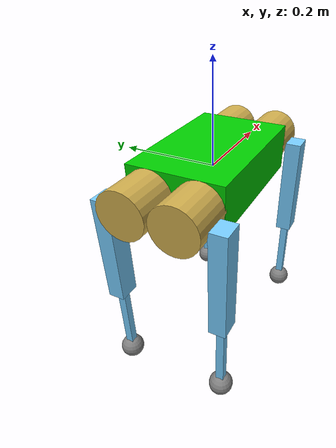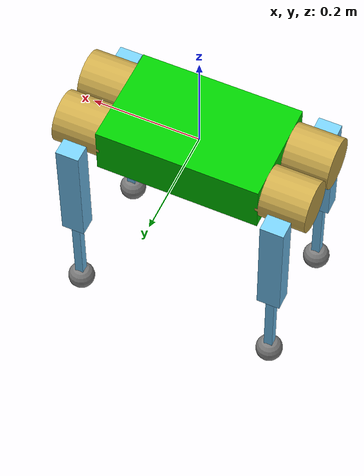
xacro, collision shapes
<?xml version="1.0" ?>
<robot name="quadruped"
    xmlns:xacro="http://ros.org/wiki/xacro">

    <xacro:arg name="robot_type"
        default="mini_cheetah" />
    <xacro:arg name="hung_up"
        default="False" />
    <xacro:arg name="gazebo_control"
        default="False" />

    <xacro:include filename="$(find quadruped_description)/urdf/common/leg.xacro" />
    <xacro:include filename="$(find quadruped_description)/urdf/common/material.xacro" />
    <xacro:include filename="$(find quadruped_description)/urdf/robot_const/$(arg robot_type).xacro" />

    <xacro:if value="$(arg hung_up)">
        <link name="world" />
        <joint name="base_static_joint"
            type="fixed">
            <origin rpy="0 0 0"
                xyz="0 0 0" />
            <parent link="world" />
            <child link="base_link" />
        </joint>
    </xacro:if>
    <xacro:unless value="$(arg hung_up)">
        <link name="root" />
        <joint name="root_dummy_joint"
            type="fixed">
            <origin rpy="0 0 0"
                xyz="0 0 0" />
            <parent link="root" />
            <child link="base_link" />
        </joint>
    </xacro:unless>

    <link name="base_link">
        <visual>
            <origin rpy="0 0 0"
                xyz="0 0 0" />
            <geometry>
                <mesh filename="package://quadruped_description/meshes/$(arg robot_type)_base.obj"
                    scale="1 1 1" />
            </geometry>
            <material name="green" />
        </visual>
        <collision>
            <origin rpy="0 0 0"
                xyz="0 0 0" />
            <geometry>
                <box size="${base_length} ${base_width} ${base_height}" />
            </geometry>
        </collision>
        <inertial>
            <origin rpy="0 0 0"
                xyz="${base_com_x} ${base_com_y} ${base_com_z}" />
            <mass value="${base_mass}" />
            <inertia ixx="${base_ixx}"
                ixy="${base_ixy}"
                ixz="${base_ixz}"
                iyy="${base_iyy}"
                iyz="${base_iyz}"
                izz="${base_izz}" />
        </inertial>
    </link>

    <xacro:leg prefix="FR"
        mirror="-1"
        mirror_mesh="False"
        front_hind="1"
        front_hind_mesh="True">
        <origin rpy="0 0 0"
            xyz="${leg_offset_x} ${-leg_offset_y} 0" />
    </xacro:leg>

    <xacro:leg prefix="FL"
        mirror="1"
        mirror_mesh="True"
        front_hind="1"
        front_hind_mesh="True">
        <origin rpy="0 0 0"
            xyz="${leg_offset_x} ${leg_offset_y} 0" />
    </xacro:leg>

    <xacro:leg prefix="RR"
        mirror="-1"
        mirror_mesh="False"
        front_hind="-1"
        front_hind_mesh="False">
        <origin rpy="0 0 0"
            xyz="${-leg_offset_x} ${-leg_offset_y} 0" />
    </xacro:leg>

    <xacro:leg prefix="RL"
        mirror="1"
        mirror_mesh="True"
        front_hind="-1"
        front_hind_mesh="False">
        <origin rpy="0 0 0"
            xyz="${-leg_offset_x} ${leg_offset_y} 0" />
    </xacro:leg>

    <xacro:if value="$(arg gazebo_control)">
        <xacro:include filename="$(find quadruped_description)/urdf/ros_control/gazebo.xacro" />
    </xacro:if >
</robot>

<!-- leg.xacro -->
<robot xmlns:xacro="http://www.ros.org/wiki/xacro">

    <xacro:macro name="leg"
        params="prefix mirror mirror_mesh front_hind front_hind_mesh *origin">

        <joint name="${prefix}_hip_joint"
            type="revolute">
            <xacro:insert_block name="origin" />
            <parent link="base_link" />
            <child link="${prefix}_hip_link" />
            <axis xyz="1 0 0" />
            <dynamics damping="${damping}"
                friction="${friction}" />
            <xacro:if value="${(mirror_mesh == True)}">
                <limit effort="${hip_torque_max}"
                    velocity="${hip_velocity_max}"
                    lower="${hip_min*PI/180}"
                    upper="${hip_max*PI/180}" />
            </xacro:if>
            <xacro:if value="${(mirror_mesh == False)}">
                <limit effort="${hip_torque_max}"
                    velocity="${hip_velocity_max}"
                    lower="${-1.0*hip_max*PI/180}"
                    upper="${-1.0*hip_min*PI/180}" />
            </xacro:if>
        </joint>

        <link name="${prefix}_hip_link">
            <visual>
                <xacro:if value="${(mirror_mesh == True) and (front_hind_mesh == True)}">
                    <origin rpy="0 0 ${-PI/2}"
                        xyz="${-1.0*hip_mesh_offest_x} 0 0" />
                </xacro:if>
                <xacro:if value="${(mirror_mesh == False) and (front_hind_mesh == True)}">
                    <origin rpy="${PI} 0 ${PI/2}"
                        xyz="${-1.0*hip_mesh_offest_x} 0 0" />
                </xacro:if>
                <xacro:if value="${(mirror_mesh == True) and (front_hind_mesh == False)}">
                    <origin rpy="${PI} 0 ${-PI/2}"
                        xyz="${hip_mesh_offest_x} 0 0" />
                </xacro:if>
                <xacro:if value="${(mirror_mesh == False) and (front_hind_mesh == False)}">
                    <origin rpy="0 0 ${PI/2}"
                        xyz="${hip_mesh_offest_x} 0 0" />
                </xacro:if>
                <geometry>
                    <mesh filename="package://quadruped_description/meshes/$(arg robot_type)_hip.obj"
                        scale="1 1 1" />
                </geometry>
                <material name="gold" />
            </visual>
            <collision>
                <origin rpy="0 ${-PI/2} 0"
                        xyz="0 0 0" />
                <geometry>
                    <cylinder radius="${hip_height/2.0}"
                        length="${hip_length}" />
                </geometry>
            </collision>
            <inertial>
                <origin rpy="0 0 0"
                    xyz="${hip_com_x*front_hind} ${hip_com_y*mirror} ${hip_com_z}" />
                <mass value="${hip_mass}" />
                <inertia ixx="${hip_ixx}"
                    ixy="${hip_ixy*mirror*front_hind}"
                    ixz="${hip_ixz*front_hind}"
                    iyy="${hip_iyy}"
                    iyz="${hip_iyz*mirror}"
                    izz="${hip_izz}" />
            </inertial>
        </link>

        <joint name="${prefix}_thigh_joint"
            type="revolute">
            <origin rpy="0 0 0"
                xyz="0 ${thigh_offset_y*mirror} 0" />
            <parent link="${prefix}_hip_link" />
            <child link="${prefix}_thigh_link" />
            <axis xyz="0 -1 0" />
            <dynamics damping="${damping}"
                friction="${friction}" />
            <limit effort="${thigh_torque_max}"
                velocity="${thigh_velocity_max}"
                lower="${thigh_min*PI/180}"
                upper="${thigh_max*PI/180}" />
        </joint>

        <link name="${prefix}_thigh_link">
            <visual>
                <origin rpy="0 ${-PI/2} 0"
                    xyz="0 0 0" />
                <geometry>
                    <mesh filename="package://quadruped_description/meshes/$(arg robot_type)_thigh.obj"
                        scale="1 1 1" />
                </geometry>
                <material name="white_blue" />
            </visual>
            <collision>
                <origin rpy="0 0 0"
                    xyz="0 0 ${-1.0*thigh_height / 2.0}" />
                <geometry>
                    <box size="${thigh_length} ${thigh_width} ${thigh_height}" />
                </geometry>
            </collision>
            <inertial>
                <origin rpy="0 0 0"
                    xyz="${thigh_com_x} ${thigh_com_y*mirror} ${thigh_com_z}" />
                <mass value="${thigh_mass}" />
                <inertia ixx="${thigh_ixx}"
                    ixy="${thigh_ixy*mirror}"
                    ixz="${thigh_ixz}"
                    iyy="${thigh_iyy}"
                    iyz="${thigh_iyz*mirror}"
                    izz="${thigh_izz}" />
            </inertial>
        </link>

        <joint name="${prefix}_calf_joint"
            type="revolute">
            <origin rpy="0 0 0"
                xyz="0 0 ${-1.0*calf_offset_z}" />
            <parent link="${prefix}_thigh_link" />
            <child link="${prefix}_calf_link" />
            <axis xyz="0 -1 0" />
            <dynamics damping="${damping}"
                friction="${friction}" />
            <limit effort="${calf_torque_max}"
                velocity="${calf_velocity_max}"
                lower="${calf_min*PI/180}"
                upper="${calf_max*PI/180}" />
        </joint>

        <link name="${prefix}_calf_link">
            <visual>
                <origin rpy="0 ${PI} 0"
                    xyz="0 0 0" />
                <geometry>
                    <mesh filename="package://quadruped_description/meshes/$(arg robot_type)_calf.obj"
                        scale="1 1 1" />
                </geometry>
                <material name="white_blue" />
            </visual>
            <collision>
                <origin rpy="0 0 0"
                    xyz="0 0 ${-1.0*calf_height / 2}" />
                <geometry>
                    <box size="${calf_length} ${calf_width} ${calf_height}" />
                </geometry>
            </collision>
            <inertial>
                <origin rpy="0 0 0"
                    xyz="${calf_com_x} ${calf_com_y} ${calf_com_z}" />
                <mass value="${calf_mass}" />
                <inertia ixx="${calf_ixx}"
                    ixy="${calf_ixy}"
                    ixz="${calf_ixz}"
                    iyy="${calf_iyy}"
                    iyz="${calf_iyz}"
                    izz="${calf_izz}" />
            </inertial>
        </link>

        <joint name="${prefix}_foot_fixed"
            type="fixed">
            <origin rpy="0 0 0"
                xyz="0 0 -0.18" />
            <parent link="${prefix}_calf_link" />
            <child link="${prefix}_foot_link" />
        </joint>

        <link name="${prefix}_foot_link">
            <visual>
                <origin rpy="0 0 0"
                    xyz="0 0.0 0.0" />
                <geometry>
                    <sphere radius="0.025" />
                </geometry>
                <material name="white_black" />
            </visual>
            <collision>
                <origin rpy="0 0 0"
                    xyz="0 0 0.0" />
                <geometry>
                    <sphere radius="0.025" />
                </geometry>
            </collision>
            <inertial>
                <origin rpy="0 0 0"
                    xyz="${foot_com_x} ${foot_com_y} ${foot_com_z}" />
                <mass value="${foot_mass}" />
                <inertia ixx="${(2.0/5.0) * foot_mass * ( (foot_radius) * (foot_radius) )}"
                    ixy="0"
                    ixz="0"
                    iyy="${(2.0/5.0) * foot_mass * ( (foot_radius) * (foot_radius) )}"
                    iyz="0"
                    izz="${(2.0/5.0) * foot_mass * ( (foot_radius) * (foot_radius) )}" />
            </inertial>
        </link>

        <xacro:if value="$(arg gazebo_control)">
            <gazebo reference="${prefix}_hip_link">
                <mu1>0.5</mu1>
                <mu2>0.5</mu2>
                <self_collide>1</self_collide>
                <material>Gazebo/Turquoise</material>
            </gazebo>
            <gazebo reference="${prefix}_thigh_link">
                <mu1>0.5</mu1>
                <mu2>0.5</mu2>
                <self_collide>0</self_collide>
                <material>Gazebo/Turquoise</material>
            </gazebo>
            <gazebo reference="${prefix}_calf_link">
                <mu1>0.5</mu1>
                <mu2>0.5</mu2>
                <self_collide>1</self_collide>
                <material>Gazebo/Turquoise</material>
            </gazebo>
            <gazebo reference="RL_foot">
                <mu1>0.9</mu1>
                <mu2>0.9</mu2>
                <self_collide>1</self_collide>
                <material>Gazebo/DarkGrey</material>
                <kp value="1000000.0" />
                <kd value="1.0" />
            </gazebo>
            <gazebo reference="${prefix}_foot_fixed">
                <disableFixedJointLumping>true</disableFixedJointLumping>
            </gazebo>
        </xacro:if >
    </xacro:macro>
</robot>

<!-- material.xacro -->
<robot>

    <material name="black">
        <color rgba="0.0 0.0 0.0 1.0"/>
    </material>

    <material name="blue">
        <color rgba="0.0 0.0 0.8 1.0"/>
    </material>

    <material name="green">
        <color rgba="0.0 0.8 0.0 1.0"/>
    </material>

    <material name="grey">
        <color rgba="0.2 0.2 0.2 1.0"/>
    </material>

    <material name="silver">
        <color rgba="${233/255} ${233/255} ${216/255} 1.0"/>
    </material>

    <material name="orange">
        <color rgba="${255/255} ${108/255} ${10/255} 1.0"/>
    </material>

    <material name="brown">
        <color rgba="${222/255} ${207/255} ${195/255} 1.0"/>
    </material>

    <material name="white_gray">
        <color rgba="${210/255} ${210/255} ${210/255} 1.0"/>
    </material>

    <material name="gold">
        <color rgba="${207/255} ${173/255} ${77/255} 1.0"/>
    </material>

    <material name="white_blue">
        <color rgba="${118/255} ${204/255} ${253/255} 1.0"/>
    </material>

     <material name="white_black">
        <color rgba="${126/255} ${126/255} ${126/255} 1.0"/>
    </material>

    <material name="red">
        <color rgba="0.8 0.0 0.0 1.0"/>
    </material>

    <material name="white">
        <color rgba="1.0 1.0 1.0 1.0"/>
    </material>

</robot>

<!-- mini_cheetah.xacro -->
<robot name="mini_cheetah_description"
    xmlns:xacro="http://www.ros.org/wiki/xacro">

    <!-- Constants for robot dimensions -->
    <xacro:property name="PI"
        value="3.14159265358979323846" />

    <!-- simplified collision value -->
    <xacro:property name="base_length"
        value="0.3" />
    <xacro:property name="base_width"
        value="0.19" />
    <xacro:property name="base_height"
        value="0.093" />

    <xacro:property name="hip_length"
        value="0.09" />
    <xacro:property name="hip_width"
        value="0.08" />
    <xacro:property name="hip_height"
        value="0.093" />

    <xacro:property name="thigh_length"
        value="0.043" />
    <xacro:property name="thigh_width"
        value="0.034" />
    <xacro:property name="thigh_height"
        value="0.22" />

    <xacro:property name="calf_length"
        value="0.016" />
    <xacro:property name="calf_width"
        value="0.016" />
    <xacro:property name="calf_height"
        value="0.20" />

    <xacro:property name="foot_radius"
        value="0.0265" />

    <!-- kinematic value -->

    <xacro:property name="thigh_offset_y"
        value="0.062" />
    <xacro:property name="calf_offset_z"
        value="0.209" />

    <!-- leg offset from base center value -->
    <xacro:property name="leg_offset_x"
        value="0.19" />
    <xacro:property name="leg_offset_y"
        value="0.049" />
    <xacro:property name="hip_offset"
        value="0.019" />

    <!-- joint limits -->
    <xacro:property name="damping"
        value="0" />
    <xacro:property name="friction"
        value="0" />
    <xacro:property name="hip_max"
        value="60" />
    <xacro:property name="hip_min"
        value="-30" />
    <xacro:property name="hip_velocity_max"
        value="10.6" />
    <xacro:property name="hip_torque_max"
        value="20" />
    <xacro:property name="hip_mechanical_reduction"
        value="9" />
    <xacro:property name="thigh_max"
        value="130" />
    <xacro:property name="thigh_min"
        value="-130" />
    <xacro:property name="thigh_velocity_max"
        value="10.6" />
    <xacro:property name="thigh_torque_max"
        value="20" />
    <xacro:property name="thigh_mechanical_reduction"
        value="9" />
    <xacro:property name="calf_max"
        value="170" />
    <xacro:property name="calf_min"
        value="-170" />
    <xacro:property name="calf_velocity_max"
        value="10.6" />
    <xacro:property name="calf_torque_max"
        value="20" />
    <xacro:property name="calf_mechanical_reduction"
        value="9" />

    <!-- dynamics inertial value -->
    <!-- base -->
    <xacro:property name="base_mass"
        value="3.3" />
    <xacro:property name="base_com_x"
        value="0.0" />
    <xacro:property name="base_com_y"
        value="0.0" />
    <xacro:property name="base_com_z"
        value="0.0" />
    <xacro:property name="base_ixx"
        value="0.011253" />
    <xacro:property name="base_ixy"
        value="0" />
    <xacro:property name="base_ixz"
        value="0.0" />
    <xacro:property name="base_iyy"
        value="0.036203" />
    <xacro:property name="base_iyz"
        value="0.0" />
    <xacro:property name="base_izz"
        value="0.042673" />

    <!-- hip -->
    <xacro:property name="hip_mass"
        value="0.54000000" />
    <xacro:property name="hip_com_x"
        value="0.00" />
    <xacro:property name="hip_com_y"
        value="0.036" />
    <xacro:property name="hip_com_z"
        value="0.0" />
    <xacro:property name="hip_ixx"
        value="0.000381" />
    <xacro:property name="hip_ixy"
        value="0.000058" />
    <xacro:property name="hip_ixz"
        value="0.00000045" />
    <xacro:property name="hip_iyy"
        value="0.000560" />
    <xacro:property name="hip_iyz"
        value="0.00000095" />
    <xacro:property name="hip_izz"
        value="0.000444" />

    <!-- thigh -->
    <xacro:property name="thigh_mass"
        value="0.634" />
    <xacro:property name="thigh_com_x"
        value="0.0" />
    <xacro:property name="thigh_com_y"
        value="0.016" />
    <xacro:property name="thigh_com_z"
        value="-0.02" />
    <xacro:property name="thigh_ixx"
        value="${(1/12) * thigh_mass * (thigh_width * thigh_width + thigh_height * thigh_height)}" />
    <xacro:property name="thigh_ixy"
        value="0.0" />
    <xacro:property name="thigh_ixz"
        value="0.0" />
    <xacro:property name="thigh_iyy"
        value="${(1/12) * thigh_mass * (thigh_length * thigh_length + thigh_height * thigh_height)}" />
    <xacro:property name="thigh_iyz"
        value="0.0" />
    <xacro:property name="thigh_izz"
        value="${(1/12) * thigh_mass * (thigh_length * thigh_length + thigh_width * thigh_width)}" />

    <!-- calf -->
    <xacro:property name="calf_mass"
        value="0.064" />
    <xacro:property name="calf_com_x"
        value="0.0" />
    <xacro:property name="calf_com_y"
        value="0.0" />
    <xacro:property name="calf_com_z"
        value="0.0" />
    <xacro:property name="calf_ixx"
        value="${(1/12) * calf_mass * (calf_width * calf_width + calf_height * calf_height)}" />
    <xacro:property name="calf_ixy"
        value="0.0" />
    <xacro:property name="calf_ixz"
        value="0.0" />
    <xacro:property name="calf_iyy"
        value="${(1/12) * calf_mass * (calf_length * calf_length + calf_height * calf_height)}" />
    <xacro:property name="calf_iyz"
        value="0.0" />
    <xacro:property name="calf_izz"
        value="${(1/12) * calf_mass * (calf_length * calf_length + calf_width * calf_width)}" />

    <!-- foot -->
    <xacro:property name="foot_mass"
        value="0.15" />
    <xacro:property name="foot_com_x"
        value="0.0" />
    <xacro:property name="foot_com_y"
        value="0.0" />
    <xacro:property name="foot_com_z"
        value="0" />
    <xacro:property name="foot_ixx"
        value="0.000025" />
    <xacro:property name="foot_ixy"
        value="0.0" />
    <xacro:property name="foot_ixz"
        value="0.0" />
    <xacro:property name="foot_iyy"
        value="0.000025" />
    <xacro:property name="foot_iyz"
        value="0.0" />
    <xacro:property name="foot_izz"
        value="0.000025" />

    <!-- visual model offset -->
    <xacro:property name="hip_mesh_offest_x"
        value="0.055" />

</robot>
